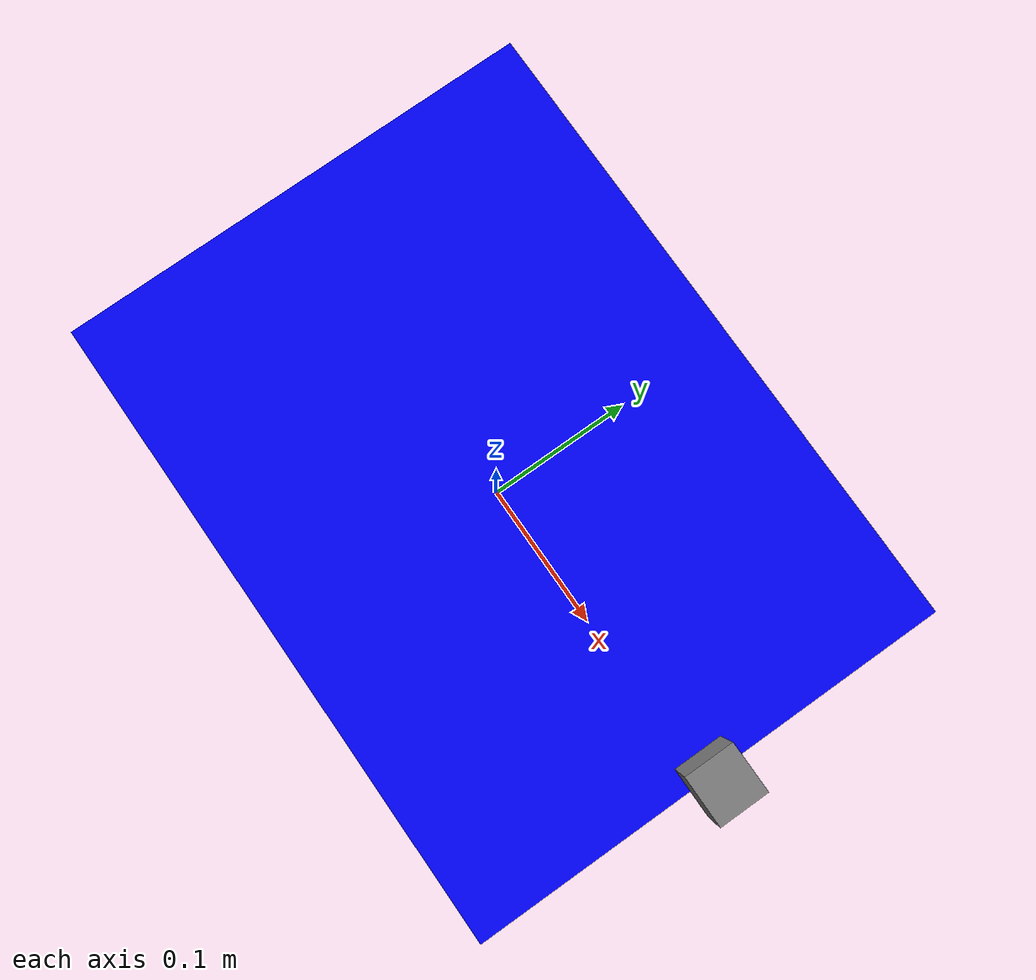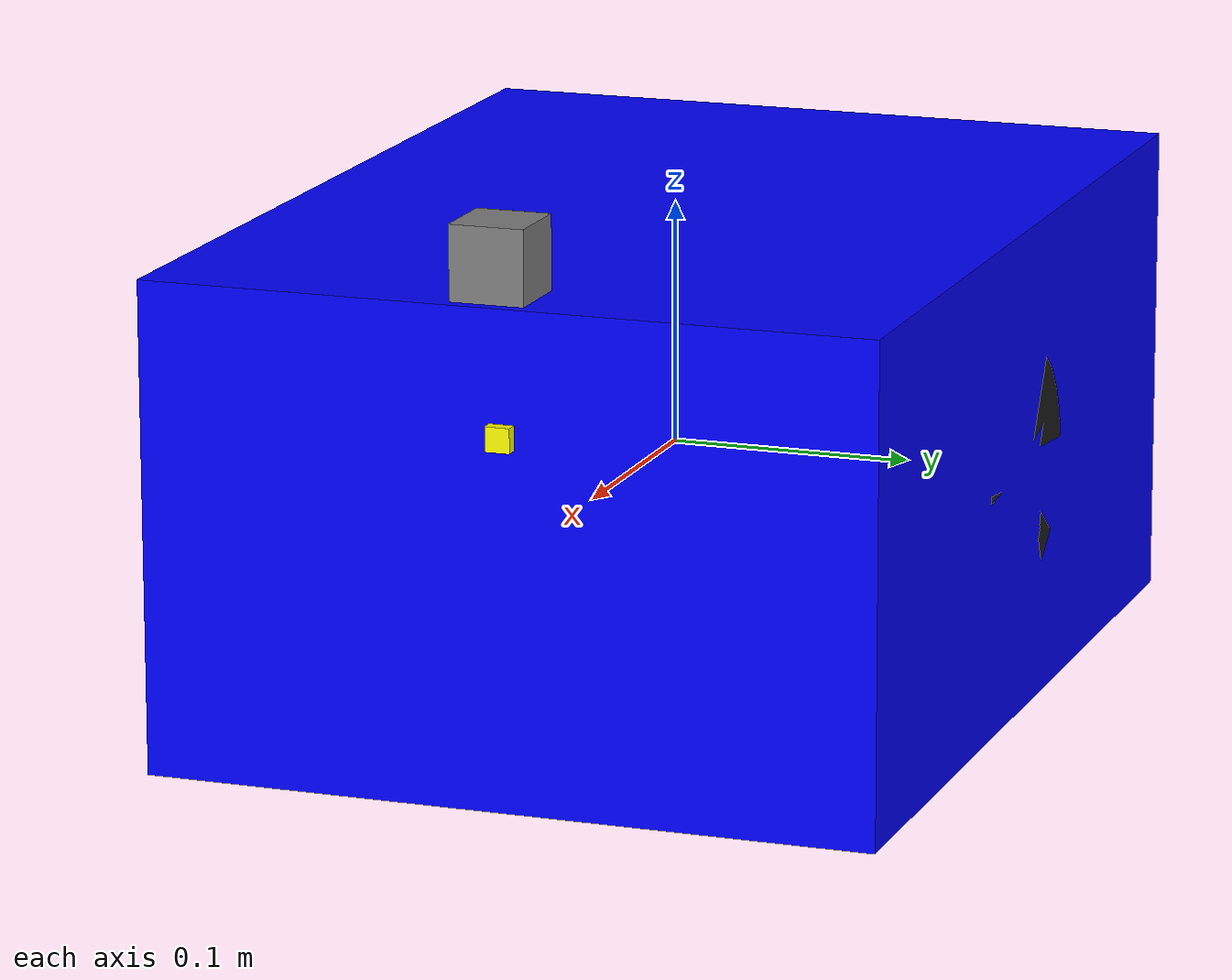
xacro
<?xml version="1.0"?>
<robot name="cogniseer_robot" xmlns:xacro="http://www.ros.org/wiki/xacro">

  <!-- Robot Macros and Parameters -->
  <xacro:property name="base_width" value="0.3"/>
  <xacro:property name="base_length" value="0.4"/>
  <xacro:property name="base_height" value="0.2"/>
  <xacro:property name="wheel_radius" value="0.05"/>
  <xacro:property name="wheel_width" value="0.05"/>
  <xacro:property name="wheel_base" value="0.25"/>
  <xacro:property name="pi" value="3.14159265359"/>

  <!-- Base Link -->
  <link name="base_link">
    <inertial>
      <mass value="5.0"/>
      <origin xyz="0 0 0.1" rpy="0 0 0"/>
      <inertia ixx="0.0833" ixy="0" ixz="0" iyy="0.0833" iyz="0" izz="0.1667"/>
    </inertial>

    <visual>
      <geometry>
        <box size="${base_length} ${base_width} ${base_height}"/>
      </geometry>
      <material name="blue">
        <color rgba="0.0 0.0 1.0 1.0"/>
      </material>
    </visual>

    <collision>
      <geometry>
        <box size="${base_length} ${base_width} ${base_height}"/>
      </geometry>
    </collision>
  </link>

  <!-- Footprint Link (for navigation) -->
  <link name="base_footprint"/>
  <joint name="base_footprint_joint" type="fixed">
    <origin xyz="0 0 0"/>
    <parent link="base_footprint"/>
    <child link="base_link"/>
  </joint>

  <!-- Left Wheel -->
  <link name="left_wheel_link">
    <inertial>
      <mass value="1.0"/>
      <origin xyz="0 0 0" rpy="0 0 0"/>
      <inertia ixx="0.01" ixy="0" ixz="0" iyy="0.01" iyz="0" izz="0.01"/>
    </inertial>

    <visual>
      <geometry>
        <cylinder radius="${wheel_radius}" length="${wheel_width}"/>
      </geometry>
      <origin xyz="0 0 0" rpy="${pi/2} 0 0"/>
      <material name="black">
        <color rgba="0.1 0.1 0.1 1.0"/>
      </material>
    </visual>

    <collision>
      <geometry>
        <cylinder radius="${wheel_radius}" length="${wheel_width}"/>
      </geometry>
      <origin xyz="0 0 0" rpy="${pi/2} 0 0"/>
    </collision>
  </link>

  <!-- Right Wheel -->
  <link name="right_wheel_link">
    <inertial>
      <mass value="1.0"/>
      <origin xyz="0 0 0" rpy="0 0 0"/>
      <inertia ixx="0.01" ixy="0" ixz="0" iyy="0.01" iyz="0" izz="0.01"/>
    </inertial>

    <visual>
      <geometry>
        <cylinder radius="${wheel_radius}" length="${wheel_width}"/>
      </geometry>
      <origin xyz="0 0 0" rpy="${pi/2} 0 0"/>
      <material name="black">
        <color rgba="0.1 0.1 0.1 1.0"/>
      </material>
    </visual>

    <collision>
      <geometry>
        <cylinder radius="${wheel_radius}" length="${wheel_width}"/>
      </geometry>
      <origin xyz="0 0 0" rpy="${pi/2} 0 0"/>
    </collision>
  </link>

  <!-- IMU Sensor Link -->
  <link name="imu_link">
    <inertial>
      <mass value="0.05"/>
      <origin xyz="0 0 0" rpy="0 0 0"/>
      <inertia ixx="0.0001" ixy="0" ixz="0" iyy="0.0001" iyz="0" izz="0.0001"/>
    </inertial>

    <visual>
      <geometry>
        <box size="0.02 0.02 0.02"/>
      </geometry>
      <material name="red">
        <color rgba="1.0 0.0 0.0 1.0"/>
      </material>
    </visual>

    <collision>
      <geometry>
        <box size="0.02 0.02 0.02"/>
      </geometry>
    </collision>
  </link>

  <!-- Proximity/Distance Sensor Link (Front) -->
  <link name="distance_sensor_front_link">
    <inertial>
      <mass value="0.01"/>
      <origin xyz="0 0 0" rpy="0 0 0"/>
      <inertia ixx="0.00001" ixy="0" ixz="0" iyy="0.00001" iyz="0" izz="0.00001"/>
    </inertial>

    <visual>
      <geometry>
        <box size="0.01 0.01 0.01"/>
      </geometry>
      <material name="yellow">
        <color rgba="1.0 1.0 0.0 1.0"/>
      </material>
    </visual>
  </link>

  <!-- Camera/Vision Link -->
  <link name="camera_link">
    <inertial>
      <mass value="0.02"/>
      <origin xyz="0 0 0" rpy="0 0 0"/>
      <inertia ixx="0.00002" ixy="0" ixz="0" iyy="0.00002" iyz="0" izz="0.00002"/>
    </inertial>

    <visual>
      <geometry>
        <box size="0.03 0.03 0.03"/>
      </geometry>
      <material name="gray">
        <color rgba="0.5 0.5 0.5 1.0"/>
      </material>
    </visual>
  </link>

  <!-- Joints -->

  <!-- Left Wheel Joint -->
  <joint name="left_wheel_joint" type="revolute">
    <parent link="base_link"/>
    <child link="left_wheel_link"/>
    <origin xyz="0 ${wheel_base/2} 0" rpy="0 0 0"/>
    <axis xyz="0 1 0"/>
    <limit lower="-${pi}" upper="${pi}" effort="100" velocity="10"/>
    <dynamics damping="0.5" friction="0.0"/>
  </joint>

  <!-- Right Wheel Joint -->
  <joint name="right_wheel_joint" type="revolute">
    <parent link="base_link"/>
    <child link="right_wheel_link"/>
    <origin xyz="0 ${-wheel_base/2} 0" rpy="0 0 0"/>
    <axis xyz="0 1 0"/>
    <limit lower="-${pi}" upper="${pi}" effort="100" velocity="10"/>
    <dynamics damping="0.5" friction="0.0"/>
  </joint>

  <!-- IMU Joint (fixed to base) -->
  <joint name="imu_joint" type="fixed">
    <parent link="base_link"/>
    <child link="imu_link"/>
    <origin xyz="0 0 0.08" rpy="0 0 0"/>
  </joint>

  <!-- Distance Sensor Front Joint (fixed) -->
  <joint name="distance_sensor_front_joint" type="fixed">
    <parent link="base_link"/>
    <child link="distance_sensor_front_link"/>
    <origin xyz="${base_length/2} 0 0.05" rpy="0 0 0"/>
  </joint>

  <!-- Camera Joint (fixed) -->
  <joint name="camera_joint" type="fixed">
    <parent link="base_link"/>
    <child link="camera_link"/>
    <origin xyz="${base_length/2} 0 0.12" rpy="0 0 0"/>
  </joint>

  <!-- Transmission for Wheels (for ros2_control) -->
  <transmission name="left_wheel_transmission">
    <type>transmission_interface/SimpleTransmission</type>
    <joint name="left_wheel_joint">
      <hardwareInterface>hardware_interface/VelocityJointInterface</hardwareInterface>
    </joint>
    <actuator name="left_wheel_motor">
      <mechanicalReduction>1</mechanicalReduction>
      <hardwareInterface>hardware_interface/VelocityJointInterface</hardwareInterface>
    </actuator>
  </transmission>

  <transmission name="right_wheel_transmission">
    <type>transmission_interface/SimpleTransmission</type>
    <joint name="right_wheel_joint">
      <hardwareInterface>hardware_interface/VelocityJointInterface</hardwareInterface>
    </joint>
    <actuator name="right_wheel_motor">
      <mechanicalReduction>1</mechanicalReduction>
      <hardwareInterface>hardware_interface/VelocityJointInterface</hardwareInterface>
    </actuator>
  </transmission>

</robot>
